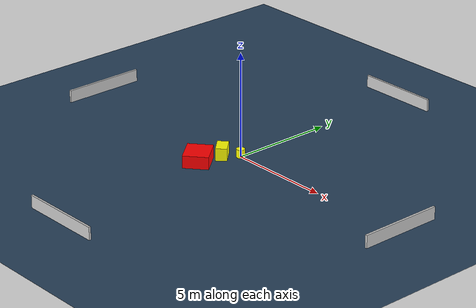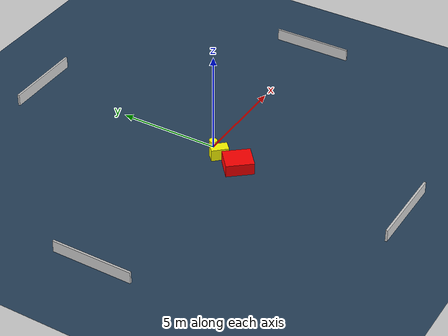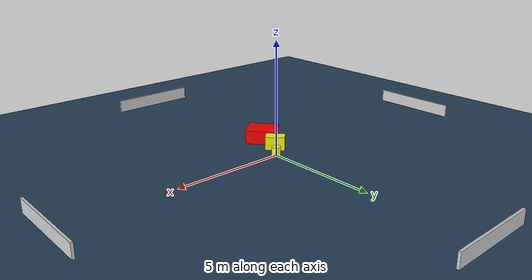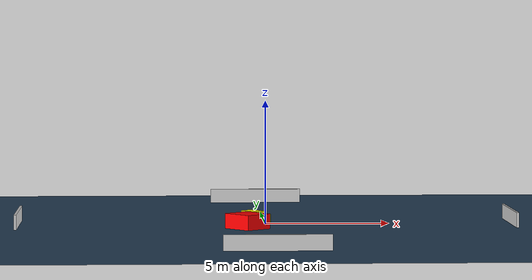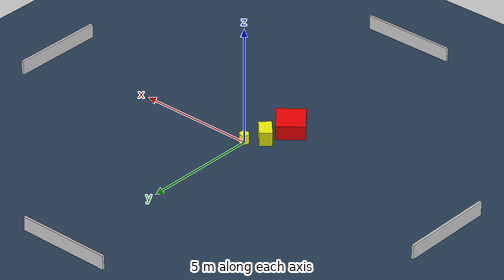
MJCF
<?xml version="1.0" ?>
<mujoco model="generated_environment">
  <option timestep="0.01" integrator="RK4" cone="elliptic"/>
  <default>
    <geom density="1"/>
  </default>
  <asset>
    <texture builtin="gradient" height="3072" name="skybox" rgb1="0.3 0.5 0.7" rgb2="0 0 0" type="skybox" width="512"/>
    <texture builtin="checker" height="300" name="groundplane" rgb1="0.2 0.3 0.4" rgb2="0.1 0.2 0.3" type="2d" width="300"/>
    <material name="groundplane" reflectance="0.2" texrepeat="5 5" texture="groundplane"/>
  </asset>
  <worldbody>
    <light dir="0 0 -1" directional="true" pos="0 0 1.5"/>
    <geom condim="3" friction="0.5 0.005 0.001" material="groundplane" name="floor" pos="0 0 0" size="0 0 0.05" type="plane"/>
    <body name="walls">
      <geom name="wall_1" condim="4" pos="-10.0 0.0 0.3" rgba="0.800000011920929 0.800000011920929 0.800000011920929 1.0" size="0.05 2.0 0.3" type="box"/>
      <geom name="wall_2" condim="4" pos="10.0 0.0 0.3" rgba="0.800000011920929 0.800000011920929 0.800000011920929 1.0" size="0.05 2.0 0.3" type="box"/>
      <geom name="wall_3" condim="4" pos="0.0 -10.0 0.3" rgba="0.800000011920929 0.800000011920929 0.800000011920929 1.0" size="2.0 0.05 0.3" type="box"/>
      <geom name="wall_4" condim="4" pos="0.0 10.0 0.3" rgba="0.800000011920929 0.800000011920929 0.800000011920929 1.0" size="2.0 0.05 0.3" type="box"/>
    </body>
    <body name="robot">
      <joint name="joint_x" type="slide" pos="0 0 0" axis="1 0 0"/>
      <joint name="joint_y" type="slide" pos="0 0 0" axis="0 1 0"/>
      <geom name="robot" type="cylinder" pos="0.0 0.0 0.2" size="0.2 0.2 0.0" mass="5.0" friction="1.0 0.005 0.0001" condim="4" rgba="1.0 1.0 0.0 1.0"/>
    </body>
    <body name="obstacle_1_movable">
      <geom name="obstacle_1_movable" condim="4" pos="-0.5281898271511752 -0.6378153778015713 0.3" euler="0 0 133.41361937897818" friction="0.0 0.005 0.001" rgba="1.0 1.0 0.0 1.0" size="0.4280741606752414 0.2633513165751816 0.3" type="box" mass="0.1"/>
      <joint type="free"/>
    </body>
    <body name="obstacle_2_static">
      <geom name="obstacle_2_static" condim="4" pos="-0.7961402344107278 -1.8271036679538946 0.3" euler="0 0 310.01225696889605" friction="0.0 0.005 0.001" rgba="1.0 0.0 0.0 1.0" size="0.6804029864960719 0.5974816242056992 0.3" type="box"/>
    </body>
  </worldbody>
  <actuator>
    <motor name="actuator_x" joint="joint_x" gear="1" ctrlrange="-1 1"/>
    <motor name="actuator_y" joint="joint_y" gear="1" ctrlrange="-1 1"/>
  </actuator>
</mujoco>
